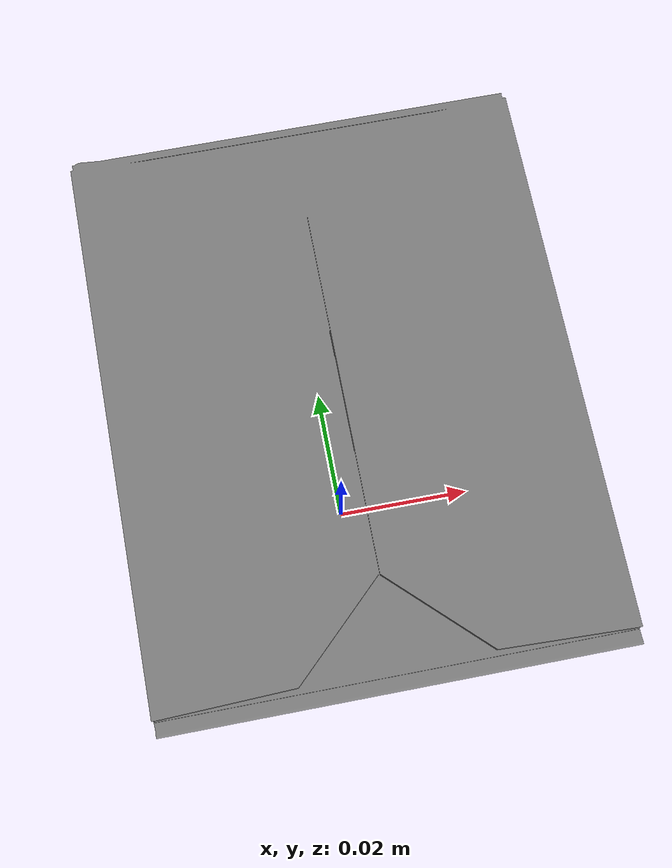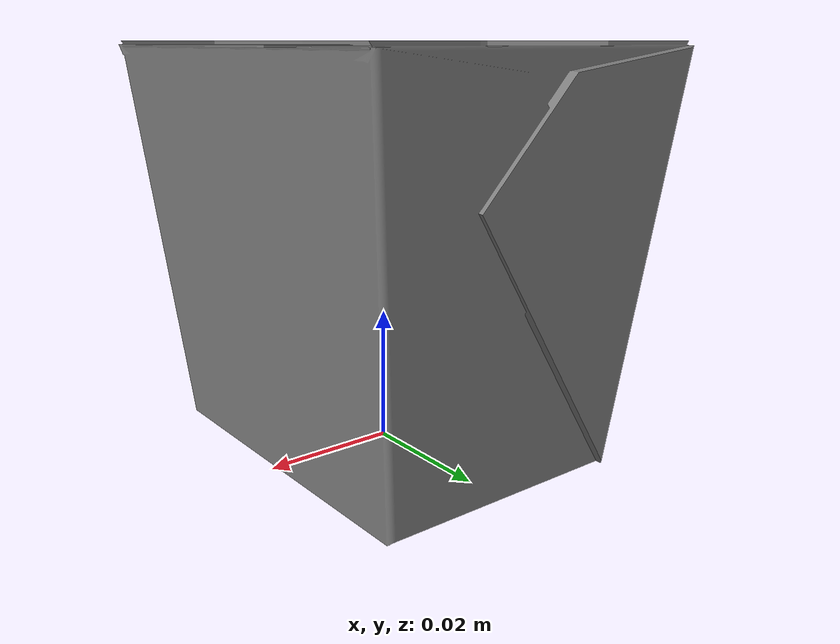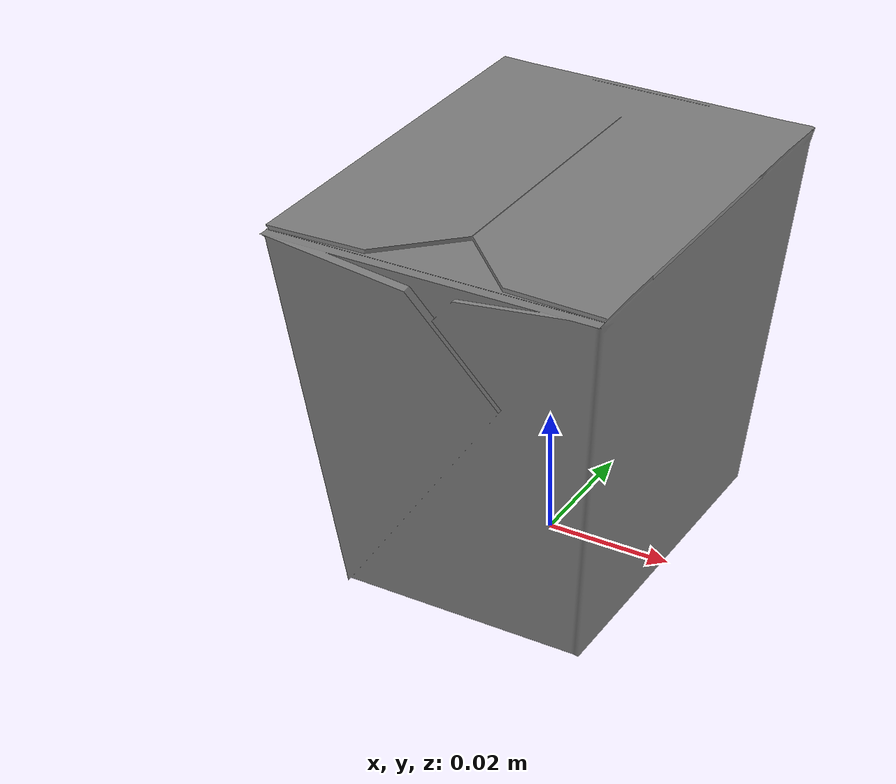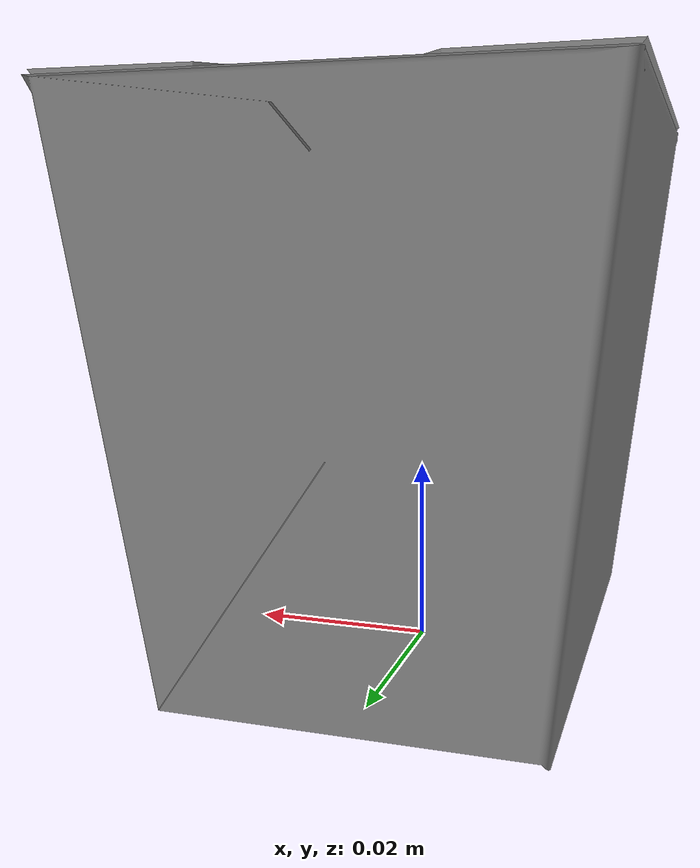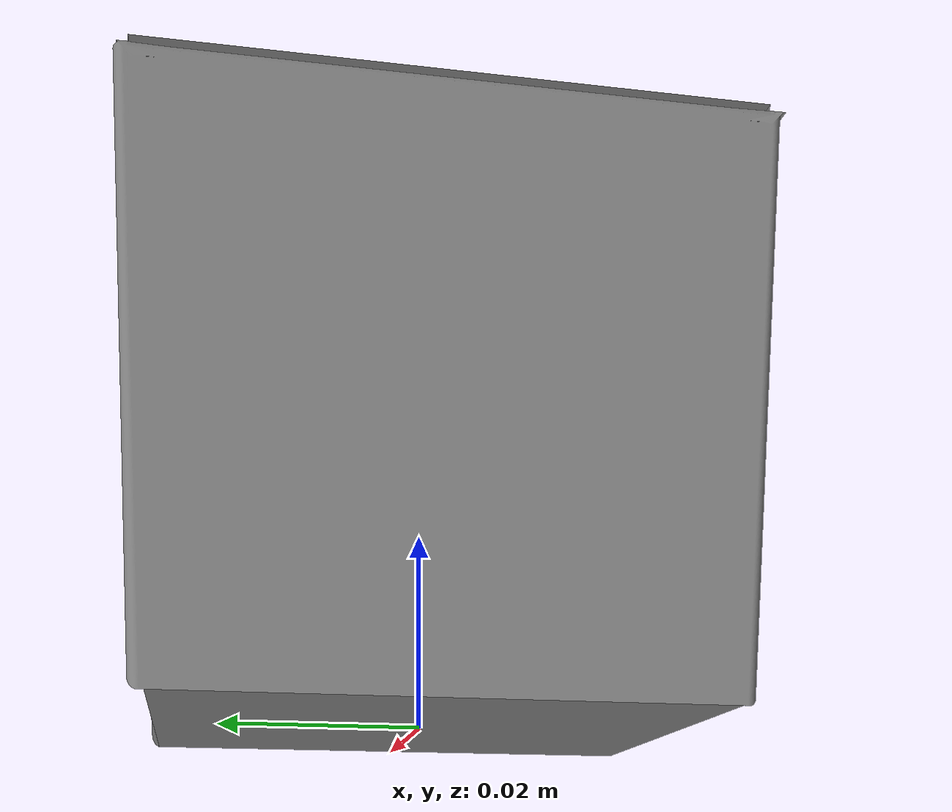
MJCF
<mujoco model="takeout">
  <compiler assetdir="assets/takeout/"/>

  <asset>
    <mesh name="takeout" file="takeout.obj"/>
    <mesh name="takeout_col" file="takeout.stl"/>
  </asset>

  <default>
    <default class="takeout">
      <default class="visual">
        <geom group="2" contype="0" conaffinity="0"/>
      </default>
      <default class="collision">
        <geom group="3" condim="3" margin="0.001"/>
      </default>
    </default>
  </default>

  <worldbody>
    <body name="takeout_body" childclass="takeout">
      <freejoint name="takeout_joint"/>
      <geom class="visual" type="mesh" mesh="takeout" />
      <geom class="collision" type="mesh" mesh="takeout_col" />
    </body>
  </worldbody>
</mujoco>
